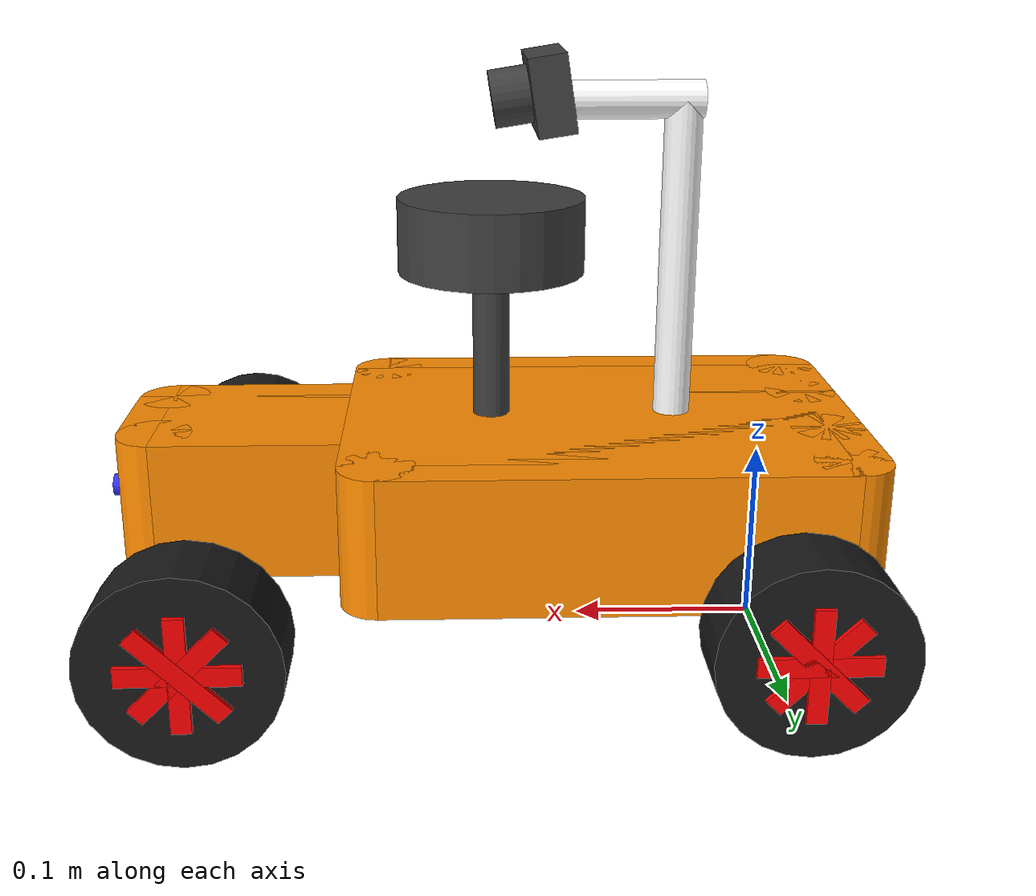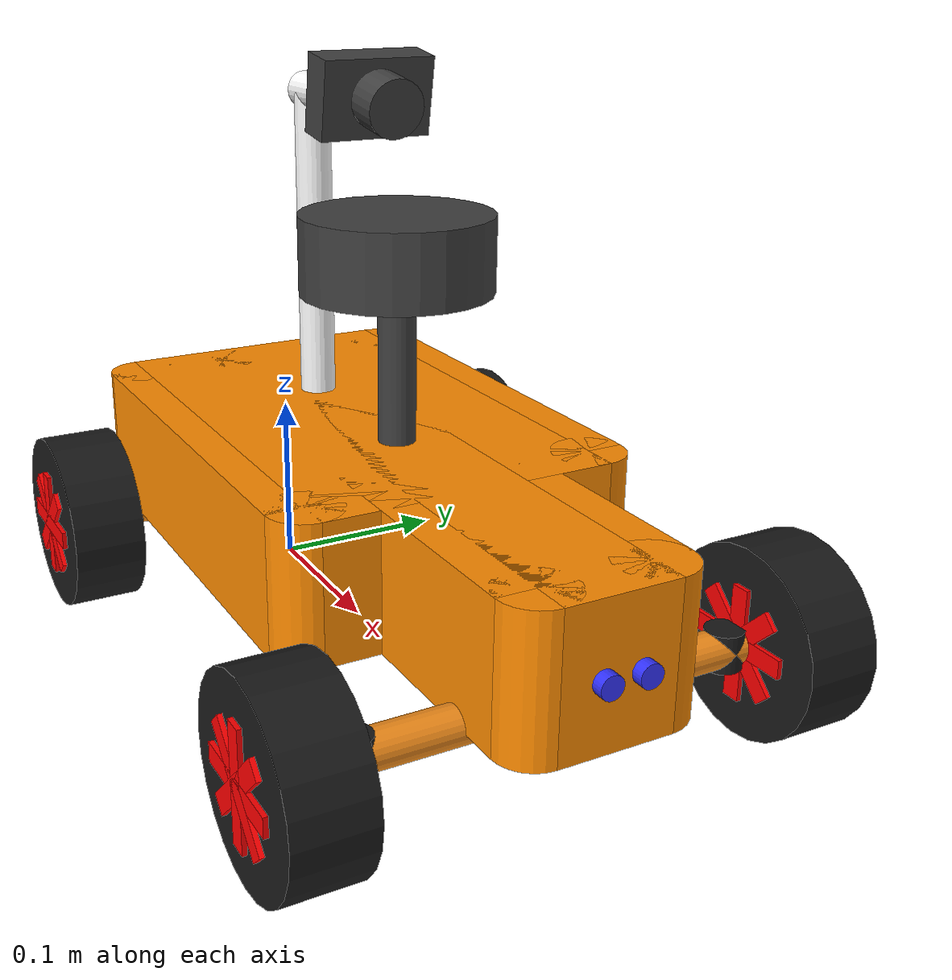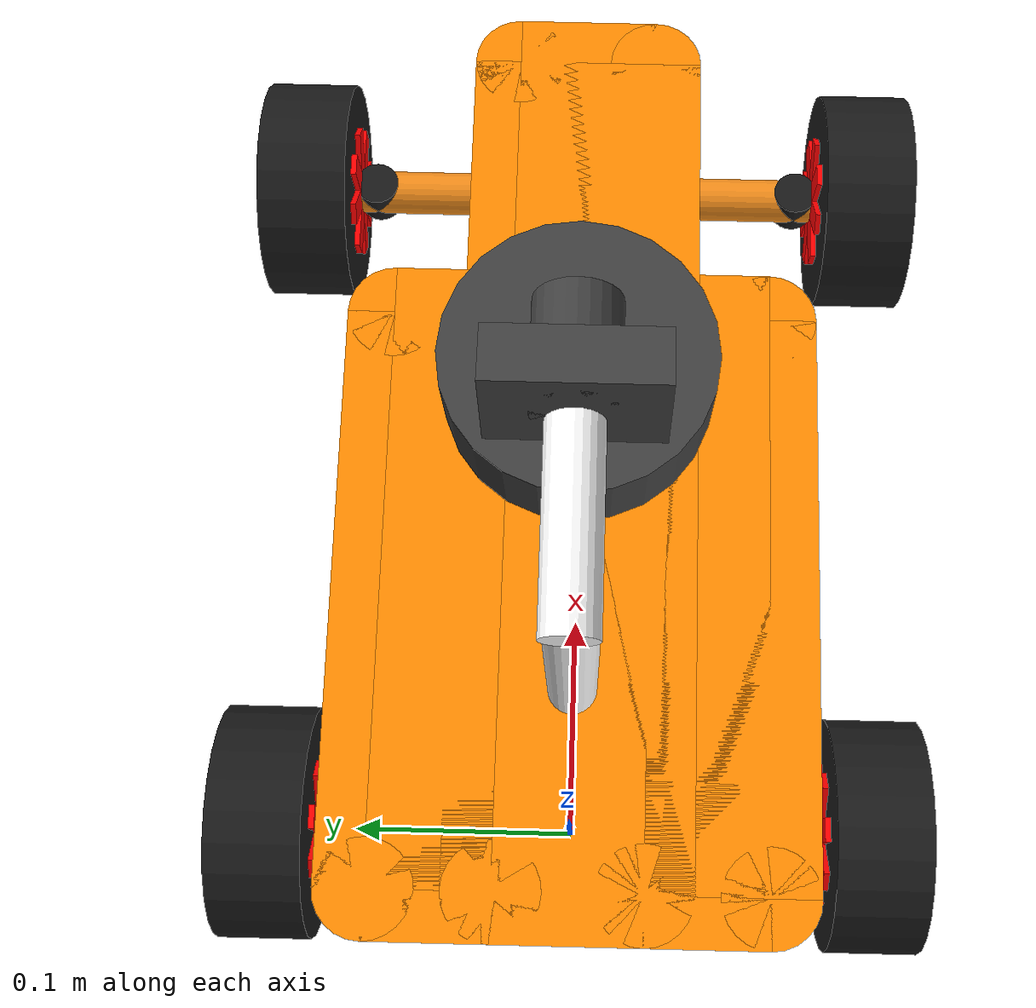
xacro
<?xml version="1.0"?>
<robot xmlns:xacro="http://www.ros.org/wiki/xacro"  name="robo_car">

    <xacro:include filename="$(find robo_car_description)/urdf/color_materials.xacro"/>
    <xacro:include filename="$(find robo_car_description)/urdf/part_macros.xacro"/>
    <xacro:include filename="$(find robo_car_description)/urdf/inertia_macros.xacro"/>
    <xacro:include filename="$(find robo_car_description)/urdf/drive_wheel_macro.xacro"/>

    <xacro:include filename="$(find robo_car_description)/urdf/ros_controllers.xacro"/>

    <xacro:include filename="$(find robo_car_description)/urdf/sensors/lidar.xacro"/>
    <xacro:include filename="$(find robo_car_description)/urdf/sensors/imu.xacro"/>
    <xacro:include filename="$(find robo_car_description)/urdf/sensors/cam.xacro"/>
    <xacro:include filename="$(find robo_car_description)/urdf/sensors/sonar.xacro"/>

    <xacro:property name="wheel_radius" value="0.05"/>
    <xacro:property name="wheel_width" value="0.04"/>
    <xacro:property name="wheel_mass" value="0.04"/>
    <xacro:property name="spoke_width" value="0.01"/>

    <xacro:property name="chassis_height" value="0.075"/>
    <xacro:property name="wheel_seperation" value="0.26"/>
    <xacro:property name="dist_btw_front_rear" value="0.3"/>

    <!-- BASE LINK -->

    <link name="base_link">
    </link>

    <!-- CHASSIS LINK -->

    <joint name="chassis_joint" type="fixed">
        <parent link="base_link"/>
        <child link="chassis"/>
        <origin xyz="0 0 0.05"/>
    </joint>

    <link name="chassis">
        <xacro:box_with_fillet size_x="0.28" size_y="0.2" size_z="${chassis_height}" fr="0.02" material="orange" x="0.09" y="0" z="${chassis_height/2}"/>
        <collision>
           <origin xyz="0.09 0 ${chassis_height/2}" rpy="0 0 0"/>
            <geometry>
                <box size="0.28 0.2 ${chassis_height}"/>
            </geometry>
        </collision>

        <xacro:box_with_fillet size_x="0.4" size_y="0.1" size_z="${chassis_height}" fr="0.02" material="orange" x="0.15" y="0" z="${chassis_height/2}"/>
        <collision>
           <origin xyz="0.15 0 ${chassis_height/2}" rpy="0 0 0"/>
            <geometry>
                <box size="0.4 0.1 ${chassis_height}"/>
            </geometry>
        </collision>

        <visual>
            <origin xyz="0 0 0" rpy="${-pi/2} 0 0"/>
            <geometry>
                <cylinder length="${wheel_seperation-0.04}" radius="0.01"/>
            </geometry>
        </visual>
        <collision>
           <origin xyz="0 0 0" rpy="${-pi/2} 0 0"/>
            <geometry>
                <cylinder length="${wheel_seperation-0.04}" radius="0.01"/>
            </geometry>
        </collision>

        <visual>
            <origin xyz="${dist_btw_front_rear} 0 0" rpy="${-pi/2} 0 0"/>
            <geometry>
                <cylinder length="${wheel_seperation-0.04}" radius="0.01"/>
            </geometry>
        </visual>
        <collision>
           <origin xyz="${dist_btw_front_rear} 0 0" rpy="${-pi/2} 0 0"/>
            <geometry>
                <cylinder length="${wheel_seperation-0.04}" radius="0.01"/>
            </geometry>
        </collision>

        <xacro:inertial_box mass="4.0" x="0.4" y="0.2" z="${chassis_height}">
            <origin xyz="0.15 0 ${chassis_height/2}" rpy="0 0 0"/>
        </xacro:inertial_box>
    </link>
    <gazebo reference="chassis">
        <material>Gazebo/Orange</material>
    </gazebo>

    <!--  FRONT LEFT SERVO STEER LINK -->

    <joint name="front_left_servo_joint" type="revolute">
        <parent link="chassis"/>
        <child link="front_left_servo"/>
        <origin xyz="${dist_btw_front_rear} 0.1 0"/>
        <axis xyz="0 0 1"/>
        <limit effort="1000.0" lower="${-pi/2}" upper="${pi/2}" velocity="0.5"/>
    </joint>

    <link name="front_left_servo">
        <visual>
            <origin xyz="0 0 0" rpy="0 0 0"/>
            <geometry>
                <cylinder radius="0.01" length="0.02"/>
            </geometry>
            <material name="black"/>
        </visual>
        <collision>
           <origin xyz="0 0 0" rpy="0 0 0"/>
            <geometry>
                <cylinder radius="0.01" length="0.02"/>
            </geometry>
        </collision>
        <xacro:inertial_cylinder mass="0.005" length="0.02" radius="0.01">
            <origin xyz="0 0 0" rpy="0 0 0"/>
        </xacro:inertial_cylinder>
    </link>
    <gazebo reference="front_left_servo">
        <material>Gazebo/DarkGrey</material>
    </gazebo>

    <!-- FRONT LEFT DRIVE WHEELS -->

    <xacro:insert_drive_wheel
        base_name="front_left_wheel"
        parent_name="front_left_servo"
        x="0" y="0.03" z="0"
        mass="${wheel_mass}"
        radius="${wheel_radius}"
        thickness="${wheel_width}"
        spoke_width="${spoke_width}"/>

    <!--  FRONT RIGHT SERVO STEER LINK -->

    <joint name="front_right_servo_joint" type="revolute">
        <parent link="chassis"/>
        <child link="front_right_servo"/>
        <origin xyz="${dist_btw_front_rear} -0.1 0"/>
        <axis xyz="0 0 1"/>
        <limit effort="1000.0" lower="${-pi/2}" upper="${pi/2}" velocity="0.5"/>
    </joint>

    <link name="front_right_servo">
        <visual>
            <origin xyz="0 0 0" rpy="0 0 0"/>
            <geometry>
                <cylinder radius="0.01" length="0.02"/>
            </geometry>
            <material name="black"/>
        </visual>
        <collision>
           <origin xyz="0 0 0" rpy="0 0 0"/>
            <geometry>
                <cylinder radius="0.01" length="0.02"/>
            </geometry>
        </collision>
        <xacro:inertial_cylinder mass="0.005" length="0.02" radius="0.01">
            <origin xyz="0 0 0" rpy="0 0 0"/>
        </xacro:inertial_cylinder>
    </link>
    <gazebo reference="front_right_servo">
        <material>Gazebo/DarkGrey</material>
    </gazebo>

    <!-- FRONT RIGHT DRIVE WHEEL -->

    <xacro:insert_drive_wheel
        base_name="front_right_wheel"
        parent_name="front_right_servo"
        x="0" y="-0.03" z="0"
        mass="${wheel_mass}"
        radius="${wheel_radius}"
        thickness="${wheel_width}"
        spoke_width="${spoke_width}"/>

    <!-- REAR LEFT AND RIGHT DRIVE WHEELS -->

    <xacro:insert_drive_wheel
        base_name="rear_left_wheel"
        parent_name="chassis"
        x="0" y="${wheel_seperation/2}" z="0"
        mass="${wheel_mass}"
        radius="${wheel_radius}"
        thickness="${wheel_width}"
        spoke_width="${spoke_width}"/>

    <xacro:insert_drive_wheel
        base_name="rear_right_wheel"
        parent_name="chassis"
        x="0" y="${-wheel_seperation/2}" z="0"
        mass="${wheel_mass}"
        radius="${wheel_radius}"
        thickness="${wheel_width}"
        spoke_width="${spoke_width}"/>

    <!--  lidar -->
    <xacro:property name="lidar_z_offset" value="0.1"/>
    <xacro:insert_lidar
        base_name="lidar"
        parent_name="chassis"
        x="0.15" y="0" z="${chassis_height+lidar_z_offset}"
        mass="0.08" samples="360"
        min_angle="${-pi*2}" max_angle="${pi*2}"
        min_range="0.1" max_range="10"
        visualize="false"/>

    <!--  imu -->
    <xacro:insert_imu
        base_name="imu"
        parent_name="chassis"
        x="0" y="0" z="${chassis_height}"/>

    <!--  normal camera style -->
    <xacro:property name="cam_x_offset" value="0.04"/>
    <xacro:property name="cam_z_offset" value="0.02"/>
    <xacro:insert_camera
        base_name="cam"
        parent_name="chassis"
        x="0.15" y="0" z="${chassis_height+cam_z_offset+0.15}"
        mass="0.005"
        width="640" height="480"
        min_range="0.02" max_range="5.0"
        tilt_angle="${pi/20}"
        visualize="false"/>

    <joint name="cam_stand_joint" type="fixed">
        <parent link="chassis"/>
        <child link="cam_stand"/>
        <origin xyz="0.05 0 0"/>
    </joint>

    <link name="cam_stand">
        <visual>
            <origin xyz="0 0 ${(chassis_height+cam_z_offset+0.15)/2}" rpy="0 0 0"/>
            <geometry>
                <cylinder radius="0.01" length="${chassis_height+cam_z_offset+0.15}"/>
            </geometry>
            <material name="white"/>
        </visual>
        <collision>
           <origin xyz="0 0 ${(chassis_height+cam_z_offset+0.15)/2}" rpy="0 0 0"/>
            <geometry>
                <cylinder radius="0.01" length="${chassis_height+cam_z_offset+0.15}"/>
            </geometry>
        </collision>

        <visual>
            <origin xyz="${(0.08/2)-0.01} 0 ${chassis_height+cam_z_offset+0.15}" rpy="0 ${-pi/2} 0"/>
            <geometry>
                <cylinder radius="0.01" length="0.08"/>
            </geometry>
            <material name="white"/>
        </visual>
        <collision>
           <origin xyz="${(0.08/2)-0.01} 0 ${chassis_height+cam_z_offset+0.15}" rpy="0 ${-pi/2} 0"/>
            <geometry>
                <cylinder radius="0.01" length="0.08"/>
            </geometry>
        </collision>

        <xacro:inertial_cylinder mass="0.005" length="0.02" radius="0.01">
            <origin xyz="0 0 0" rpy="0 0 0"/>
        </xacro:inertial_cylinder>
    </link>
    <gazebo reference="cam_stand">
        <material>Gazebo/White</material>
    </gazebo>

    <!--  front sonar sensor -->
    <xacro:insert_sonar
        base_name="sonar"
        parent_name="chassis"
        x="${0.15+0.2+0.005}" y="0" z="${(chassis_height/2)}"
        mass="0.0005"
        min_range="0.02" max_range="3.0"
        resolution="0.01" visualize="false"/>

</robot>

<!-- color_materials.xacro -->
<robot name="robo_car" xmlns:xacro="http://www.ros.org/wiki/xacro" >

    <material name="white">
        <color rgba="1 1 1 1" />
    </material>

    <material name="grey">
        <color rgba="0.25 0.25 0.25 1"/>
    </material>

    <material name="orange">
        <color rgba="1 0.55 0 1"/>
    </material>

    <material name="blue">
        <color rgba="0.2 0.2 1 1"/>
    </material>

    <material name="red">
        <color rgba="1 0 0 1"/>
    </material>

    <material name="black">
        <color rgba="0.1 0.1 0.1 1"/>
    </material>

    <material name="silver">
        <color rgba="0.6 0.6 0.6 1"/>
    </material>

</robot>

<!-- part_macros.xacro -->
<robot name="rover" xmlns:xacro="http://www.ros.org/wiki/xacro" >

    <xacro:macro name="box_with_fillet" params="size_x size_y size_z fr material x y z">
            <!-- logitudinal box -->
            <visual>
                <origin xyz="${x} ${y} ${z}" rpy="0 0 0"/>
                <geometry>
                    <box size="${size_x} ${size_y-(2*fr)} ${size_z}"/>
                </geometry>
                <material name="${material}"/>
            </visual>
            <!-- lateral box -->
            <visual>
                <origin xyz="${x} ${y} ${z}" rpy="0 0 0"/>
                <geometry>
                    <box size="${size_x-(2*fr)} ${size_y} ${size_z}"/>
                </geometry>
                <material name="${material}"/>
            </visual>
            <!-- cylinder1 -->
            <visual>
                <origin xyz="${x+((size_x/2)-fr)} ${y+((size_y/2)-fr)} ${z}" rpy="0 0 0"/>
                <geometry>
                    <cylinder length="${size_z}" radius="${fr}"/>
                </geometry>
                <material name="${material}"/>
            </visual>
            <!-- cylinder2 -->
            <visual>
                <origin xyz="${x+((size_x/2)-fr)} ${y-((size_y/2)-fr)} ${z}" rpy="0 0 0"/>
                <geometry>
                    <cylinder length="${size_z}" radius="${fr}"/>
                </geometry>
                <material name="${material}"/>
            </visual>
            <!-- cylinder3 -->
            <visual>
                <origin xyz="${x-((size_x/2)-fr)} ${y+((size_y/2)-fr)} ${z}" rpy="0 0 0"/>
                <geometry>
                    <cylinder length="${size_z}" radius="${fr}"/>
                </geometry>
                <material name="${material}"/>
            </visual>
            <!-- cylinder4 -->
            <visual>
                <origin xyz="${x-((size_x/2)-fr)} ${y-((size_y/2)-fr)} ${z}" rpy="0 0 0"/>
                <geometry>
                    <cylinder length="${size_z}" radius="${fr}"/>
                </geometry>
                <material name="${material}"/>
            </visual>
    </xacro:macro>

    <xacro:macro name="insert_drive_wheel">
        <visual>
            <origin xyz="0 0 0" rpy="0 0 0"/>
            <geometry>
                <cylinder radius="0.065" length="0.06"/>
            </geometry>
            <material name="black"/>
        </visual>
        <collision>
           <origin xyz="0 0 0" rpy="0 0 0"/>
            <geometry>
                <cylinder radius="0.065" length="0.06"/>
            </geometry>
        </collision>
        <xacro:inertial_cylinder mass="0.2" length="0.06" radius="0.065">
            <origin xyz="0 0 0" rpy="0 0 0"/>
        </xacro:inertial_cylinder>
    </xacro:macro>

    <xacro:macro name="insert_wheel_rim">
        <visual>
            <origin xyz="0 0 0" rpy="0 0 0"/>
            <geometry>
                <box size="0.01 0.07 0.0605"/>
            </geometry>
            <material name="red"/>
        </visual>
        <visual>
            <origin xyz="0 0 0" rpy="0 0 ${pi/2}"/>
            <geometry>
                <box size="0.01 0.07 0.0605"/>
            </geometry>
            <material name="red"/>
        </visual>
        <visual>
            <origin xyz="0 0 0" rpy="0 0 ${-pi/4}"/>
            <geometry>
                <box size="0.01 0.07 0.0605"/>
            </geometry>
            <material name="red"/>
        </visual>
        <visual>
            <origin xyz="0 0 0" rpy="0 0 ${pi/4}"/>
            <geometry>
                <box size="0.01 0.07 0.0605"/>
            </geometry>
            <material name="red"/>
        </visual>
    </xacro:macro>

    <xacro:macro name="insert_servo_hinge">
        <visual>
            <origin xyz="0 -0.015 -0.005" rpy="0 0 0"/>
            <geometry>
                <box size="0.05 0.07 0.01"/>
            </geometry>
            <material name="orange"/>
        </visual>
        <collision>
           <origin xyz="0 -0.015 -0.005" rpy="0 0 0"/>
            <geometry>
                <box size="0.05 0.07 0.01"/>
            </geometry>
        </collision>

        <visual>
            <origin xyz="0 -0.045 -0.05" rpy="0 0 0"/>
            <geometry>
                <box size="0.05 0.01 0.1"/>
            </geometry>
            <material name="orange"/>
        </visual>
        <collision>
           <origin xyz="0 -0.05 -0.05" rpy="0 0 0"/>
            <geometry>
                <box size="0.05 0.01 0.1"/>
            </geometry>
        </collision>
        <xacro:inertial_cylinder mass="0.1" length="0.11" radius="0.025">
            <origin xyz="0 0 0" rpy="0 0 0"/>
        </xacro:inertial_cylinder>
    </xacro:macro>

</robot>

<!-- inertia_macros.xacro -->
<robot name="robo_car" xmlns:xacro="http://www.ros.org/wiki/xacro" >

    <!-- Specify some standard inertial calculations https://en.wikipedia.org/wiki/List_of_moments_of_inertia -->
    <!-- These make use of xacro's mathematical functionality -->

    <!-- ################### inertia macros  ############################-->

    <xacro:macro name="inertial_sphere" params="mass radius *origin">
        <inertial>
            <xacro:insert_block name="origin"/>
            <mass value="${mass}" />
            <inertia ixx="${(2/5) * mass * (radius*radius)}" ixy="0.0" ixz="0.0"
                    iyy="${(2/5) * mass * (radius*radius)}" iyz="0.0"
                    izz="${(2/5) * mass * (radius*radius)}" />
        </inertial>
    </xacro:macro>

    <xacro:macro name="inertial_box" params="mass x y z *origin">
        <inertial>
            <xacro:insert_block name="origin"/>
            <mass value="${mass}" />
            <inertia ixx="${(1/12) * mass * (y*y+z*z)}" ixy="0.0" ixz="0.0"
                    iyy="${(1/12) * mass * (x*x+z*z)}" iyz="0.0"
                    izz="${(1/12) * mass * (x*x+y*y)}" />
        </inertial>
    </xacro:macro>

    <xacro:macro name="inertial_cylinder" params="mass length radius *origin">
        <inertial>
            <xacro:insert_block name="origin"/>
            <mass value="${mass}" />
            <inertia ixx="${(1/12) * mass * (3*radius*radius + length*length)}" ixy="0.0" ixz="0.0"
                    iyy="${(1/12) * mass * (3*radius*radius + length*length)}" iyz="0.0"
                    izz="${(1/2) * mass * (radius*radius)}" />
        </inertial>
    </xacro:macro>

</robot>

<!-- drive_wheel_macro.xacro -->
<robot name="robo_car" xmlns:xacro="http://www.ros.org/wiki/xacro" >

    <xacro:macro name="material_black">
        <material name="black">
            <color rgba="0.1 0.1 0.1 1"/>
        </material>
    </xacro:macro>

    <xacro:macro name="material_blue">
        <material name="blue">
            <color rgba="0.2 0.2 1 1"/>
        </material>
    </xacro:macro>

    <xacro:macro name="material_red">
        <material name="red">
            <color rgba="1 0 0 1"/>
        </material>
    </xacro:macro>

    <xacro:macro name="inertial_cylinder" params="mass length radius *origin">
        <inertial>
            <xacro:insert_block name="origin"/>
            <mass value="${mass}" />
            <inertia ixx="${(1/12) * mass * (3*radius*radius + length*length)}" ixy="0.0" ixz="0.0"
                    iyy="${(1/12) * mass * (3*radius*radius + length*length)}" iyz="0.0"
                    izz="${(1/2) * mass * (radius*radius)}" />
        </inertial>
    </xacro:macro>

     <!-- GAZEBO WHEEL PARAMETERS -->
    <xacro:macro name="gazebo_wheel_settings" params="name">
        <gazebo reference="${name}">
            <mu1>1.0</mu1>
            <mu2>1.0</mu2>
            <kp>5000000</kp>
            <kd>0.1</kd>
            <minDepth>0.002</minDepth>
            <material>Gazebo/FlatBlack</material>
        </gazebo>
    </xacro:macro>

    <xacro:macro name="gazebo_rim_settings" params="name">
        <gazebo reference="${name}">
            <material>Gazebo/Red</material>
        </gazebo>
    </xacro:macro>

    <xacro:macro name="insert_drive_wheel" params="base_name parent_name x y z mass radius thickness spoke_width">
        <joint name="${base_name}_joint" type="continuous">
            <parent link="${parent_name}"/>
            <child link="${base_name}"/>
            <origin xyz="${x} ${y} ${z}" rpy="${-pi/2} 0 0"/>
            <axis xyz="0 0 1"/>
        </joint>

        <link name="${base_name}">
            <visual>
                <origin xyz="0 0 0" rpy="0 0 0"/>
                <geometry>
                    <cylinder radius="${radius}" length="${thickness}"/>
                </geometry>
                <xacro:material_black/>
            </visual>
            <collision>
            <origin xyz="0 0 0" rpy="0 0 0"/>
                <geometry>
                    <cylinder radius="${radius}" length="${thickness}"/>
                </geometry>
            </collision>
            <xacro:inertial_cylinder mass="${mass}" length="${thickness}" radius="${radius}">
                <origin xyz="0 0 0" rpy="0 0 0"/>
            </xacro:inertial_cylinder>
        </link>

        <xacro:gazebo_wheel_settings name="${base_name}"/>

        <joint name="${base_name}_rim_joint" type="fixed">
            <parent link="${base_name}"/>
            <child link="${base_name}_rim"/>
            <origin xyz="0 0 0" rpy="0 0 0"/>
        </joint>

        <link name="${base_name}_rim">
            <visual>
                <origin xyz="0 0 0" rpy="0 0 0"/>
                <geometry>
                    <box size="${spoke_width} ${radius*1.2} ${thickness+0.005}"/>
                </geometry>
                <xacro:material_red/>
            </visual>
            <visual>
                <origin xyz="0 0 0" rpy="0 0 ${pi/2}"/>
                <geometry>
                    <box size="${spoke_width} ${radius*1.2} ${thickness+0.005}"/>
                </geometry>
                <xacro:material_red/>
            </visual>
            <visual>
                <origin xyz="0 0 0" rpy="0 0 ${-pi/4}"/>
                <geometry>
                    <box size="${spoke_width} ${radius*1.2} ${thickness+0.005}"/>
                </geometry>
                <xacro:material_red/>
            </visual>
            <visual>
                <origin xyz="0 0 0" rpy="0 0 ${pi/4}"/>
                <geometry>
                    <box size="${spoke_width} ${radius*1.2} ${thickness+0.005}"/>
                </geometry>
                <xacro:material_red/>
            </visual>

        </link>

        <xacro:gazebo_rim_settings name="${base_name}_rim"/>

    </xacro:macro>

</robot>

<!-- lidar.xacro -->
<robot xmlns:xacro="http://www.ros.org/wiki/xacro" >

    <xacro:macro name="insert_lidar" params="base_name parent_name x y z mass samples min_angle max_angle min_range max_range visualize">
        <joint name="${base_name}_joint" type="fixed">
            <parent link="${parent_name}"/>
            <child link="${base_name}"/>
            <origin xyz="${x} ${y} ${z}" rpy="0 0 0"/>
        </joint>

        <link name="${base_name}">
            <visual>
                <origin xyz="0 0 0"/>
                <geometry>
                    <cylinder radius="0.05" length="0.04"/>
                </geometry>
                <material name="grey"/>
            </visual>
            <visual>
                <origin xyz="0 0 -0.05"/>
                <geometry>
                    <cylinder radius="0.01" length="0.1"/>
                </geometry>
                <material name="grey"/>
            </visual>
            <collision>
                <geometry>
                    <cylinder radius="0.05" length="0.04"/>
                </geometry>
            </collision>
            <xacro:inertial_cylinder mass="${mass}" length="0.04" radius="0.05">
                <origin xyz="0 0 0" rpy="0 0 0"/>
            </xacro:inertial_cylinder>
        </link>

        <gazebo reference="${base_name}">
            <material>Gazebo/DarkGrey</material>

            <sensor name="${base_name}" type="ray">
                <pose> 0 0 0 0 0 0 </pose>
                <visualize>${visualize}</visualize>
                <update_rate>10</update_rate>
                <ray>
                    <scan>
                        <horizontal>
                            <samples>${samples}</samples>
                            <min_angle>${min_angle}</min_angle>
                            <max_angle>${max_angle}</max_angle>
                        </horizontal>
                    </scan>
                    <range>
                        <min>${min_range}</min>
                        <max>${max_range}</max>
                    </range>
                </ray>
                <plugin name="${base_name}_plugin" filename="libgazebo_ros_ray_sensor.so">
                    <ros>
                        <namespace>${base_name}</namespace>
                        <remapping>~/out:=scan</remapping>
                    </ros>
                    <output_type>sensor_msgs/LaserScan</output_type>
                    <frame_name>${base_name}</frame_name>
                </plugin>
            </sensor>
        </gazebo>
    </xacro:macro>

</robot>

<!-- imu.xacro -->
<robot xmlns:xacro="http://www.ros.org/wiki/xacro">

    <xacro:macro name="insert_imu" params="base_name parent_name x y z">
        <joint name="${base_name}_joint" type="fixed">
            <parent link="${parent_name}"/>
            <child link="${base_name}"/>
            <origin xyz="${x} ${y} ${z}" rpy="0 0 0"/>
        </joint>

        <link name="${base_name}"/>

        <gazebo reference="${base_name}">
            <sensor name="${base_name}" type="imu">
                <always_on>true</always_on>
                <update_rate>30</update_rate>
                <visualize>true</visualize>
                <imu>
                    <angular_velocity>
                        <x>
                            <noise type="gaussian">
                                <mean>0.0</mean>
                                <stddev>2e-4</stddev>
                            </noise>
                        </x>
                        <y>
                            <noise type="gaussian">
                                <mean>0.0</mean>
                                <stddev>2e-4</stddev>
                            </noise>
                        </y>
                        <z>
                            <noise type="gaussian">
                                <mean>0.0</mean>
                                <stddev>2e-4</stddev>
                            </noise>
                        </z>
                    </angular_velocity>
                    <linear_acceleration>
                        <x>
                            <noise type="gaussian">
                                <mean>0.0</mean>
                                <stddev>1.7e-2</stddev>
                            </noise>
                        </x>
                        <y>
                            <noise type="gaussian">
                                <mean>0.0</mean>
                                <stddev>1.7e-2</stddev>
                            </noise>
                        </y>
                        <z>
                            <noise type="gaussian">
                                <mean>0.0</mean>
                                <stddev>1.7e-2</stddev>
                            </noise>
                        </z>
                    </linear_acceleration>
                </imu>
                <plugin name="${base_name}_plugin" filename="libgazebo_ros_imu_sensor.so">
                    <ros>
                        <namespace>${base_name}</namespace>
                        <remapping>~/out:=data</remapping>
                    </ros>
                    <initial_orientation_as_reference>false</initial_orientation_as_reference>
                    <frame_name>${base_name}</frame_name>
                </plugin>
            </sensor>
        </gazebo>
    </xacro:macro>

</robot>

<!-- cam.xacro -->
<robot xmlns:xacro="http://www.ros.org/wiki/xacro" >

    <xacro:macro name="insert_camera" params="base_name parent_name x y z mass width height min_range max_range tilt_angle visualize">
        <joint name="${base_name}_joint" type="fixed">
            <parent link="${parent_name}"/>
            <child link="${base_name}"/>
            <origin xyz="${x} ${y} ${z}" rpy="0 ${tilt_angle} 0"/>
        </joint>

        <link name="${base_name}">
            <visual>
                <origin xyz="-0.02 0 0" rpy="0 ${-pi/2} 0"/>
                <geometry>
                    <cylinder radius="0.015" length="0.04"/>
                </geometry>
                <material name="grey"/>
            </visual>
            <visual>
                <origin xyz="-0.03 0 0" rpy="0 ${-pi/2} 0"/>
                <geometry>
                    <box size="0.04 0.06 0.02"/>
                </geometry>
                <material name="grey"/>
            </visual>

            <collision>
                <origin xyz="-0.02 0 0" rpy="0 ${-pi/2} 0"/>
                <geometry>
                    <cylinder radius="0.02" length="0.04"/>
                </geometry>
            </collision>
            <xacro:inertial_cylinder mass="${mass}" radius="0.02" length="0.04">
                <origin xyz="-0.02 0 0" rpy="0 ${-pi/2} 0"/>
            </xacro:inertial_cylinder>
        </link>

        <joint name="${base_name}_optical_joint" type="fixed">
            <parent link="${base_name}"/>
            <child link="${base_name}_optical_link"/>
            <origin xyz="0 0 0" rpy="${-pi/2} 0 ${-pi/2}"/>
        </joint>

        <link name="${base_name}_optical_link"/>

        <gazebo reference="${base_name}">
          <material>Gazebo/DarkGrey</material>

          <sensor name="${base_name}" type="camera">
            <pose> 0 0 0 0 0 0 </pose>
            <visualize>${visualize}</visualize>
            <update_rate>20</update_rate>
            <camera>
                <horizontal_fov>1.46608</horizontal_fov>
                <image>
                    <format>R8G8B8</format>
                    <width>${width}</width>
                    <height>${height}</height>
                </image>
                <clip>
                    <near>${min_range}</near>
                    <far>${max_range}</far>
                </clip>
            </camera>
            <plugin name="${base_name}_plugin" filename="libgazebo_ros_camera.so">
                <frame_name>${base_name}_optical_link</frame_name>
            </plugin>
          </sensor>
        </gazebo>

    </xacro:macro>

</robot>

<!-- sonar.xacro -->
<robot xmlns:xacro="http://www.ros.org/wiki/xacro">

    <xacro:macro name="insert_sonar" params="base_name parent_name x y z mass min_range max_range resolution visualize">

        <joint name="${base_name}_joint" type="fixed">
            <parent link="${parent_name}"/>
            <child link="${base_name}"/>
            <origin xyz="${x} ${y} ${z}" rpy="0 0 0"/>
        </joint>

        <link name="${base_name}">
            <visual>
                <origin xyz="0 0.01 0" rpy="0 ${pi/2} 0"/>
                <geometry>
                    <cylinder radius="0.006" length="0.006"/>
                </geometry>
                <material name="blue"/>
            </visual>
            <collision>
                <origin xyz="0 0.01 0" rpy="0 ${pi/2} 0"/>
                <geometry>
                    <cylinder radius="0.006" length="0.006"/>
                </geometry>
            </collision>

            <visual>
                <origin xyz="0 -0.01 0" rpy="0 ${pi/2} 0"/>
                <geometry>
                    <cylinder radius="0.006" length="0.006"/>
                </geometry>
                <material name="blue"/>
            </visual>
            <collision>
                <origin xyz="0 -0.01 0" rpy="0 ${pi/2} 0"/>
                <geometry>
                    <cylinder radius="0.006" length="0.006"/>
                </geometry>
            </collision>

            <xacro:inertial_cylinder mass="${mass}" length="0.006" radius="0.006">
                <origin xyz="0 0.01 0" rpy="0 ${pi/2} 0"/>
            </xacro:inertial_cylinder>
        </link>

        <gazebo reference="${base_name}">
            <material>Gazebo/Blue</material>

            <sensor name="${base_name}" type="ray">
                <always_on>true</always_on>
                <visualize>${visualize}</visualize>
                <pose>0.0 0 0.0 0 0 0</pose>
                <update_rate>5</update_rate>
                <ray>
                    <scan>
                        <horizontal>
                            <samples>20</samples>
                            <resolution>1</resolution>
                            <min_angle>${-pi/90}</min_angle>
                            <max_angle>${pi/90}</max_angle>
                        </horizontal>
                        <vertical>
                            <samples>20</samples>
                            <resolution>1</resolution>
                            <min_angle>${-pi/150}</min_angle>
                            <max_angle>${pi/150}</max_angle>
                        </vertical>
                    </scan>
                    <range>
                        <min>${min_range}</min>
                        <max>${max_range}</max>
                        <resolution>${resolution}</resolution>
                    </range>
                </ray>

                <plugin name="${base_name}_plugin" filename="libgazebo_ros_ray_sensor.so">
                    <ros>
                        <namespace>${base_name}</namespace>
                        <remapping>~/out:=range</remapping>
                    </ros>
                    <output_type>sensor_msgs/Range</output_type>
                    <radiation_type>ultrasound</radiation_type>
                    <frame_name>${base_name}</frame_name>
                </plugin>
            </sensor>
        </gazebo>
    </xacro:macro>

</robot>
